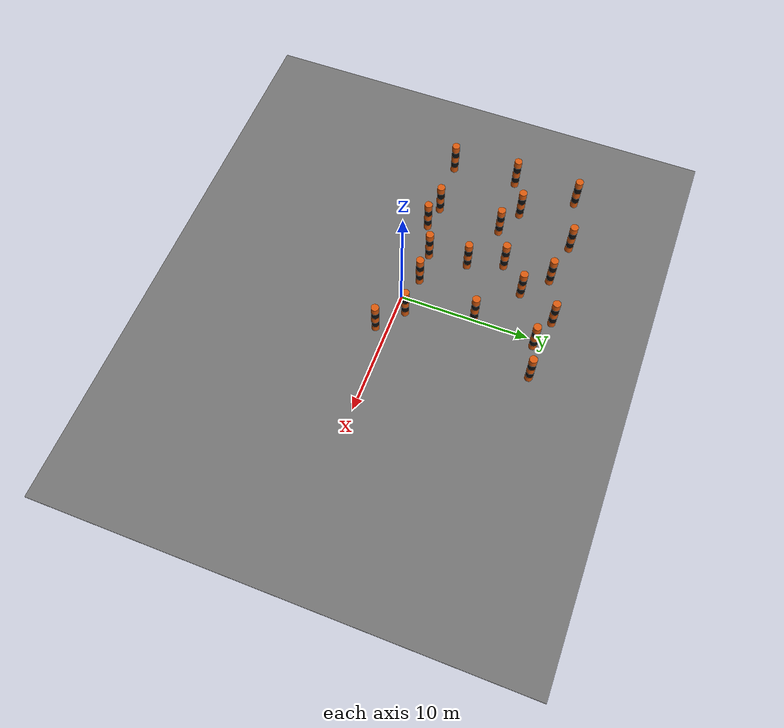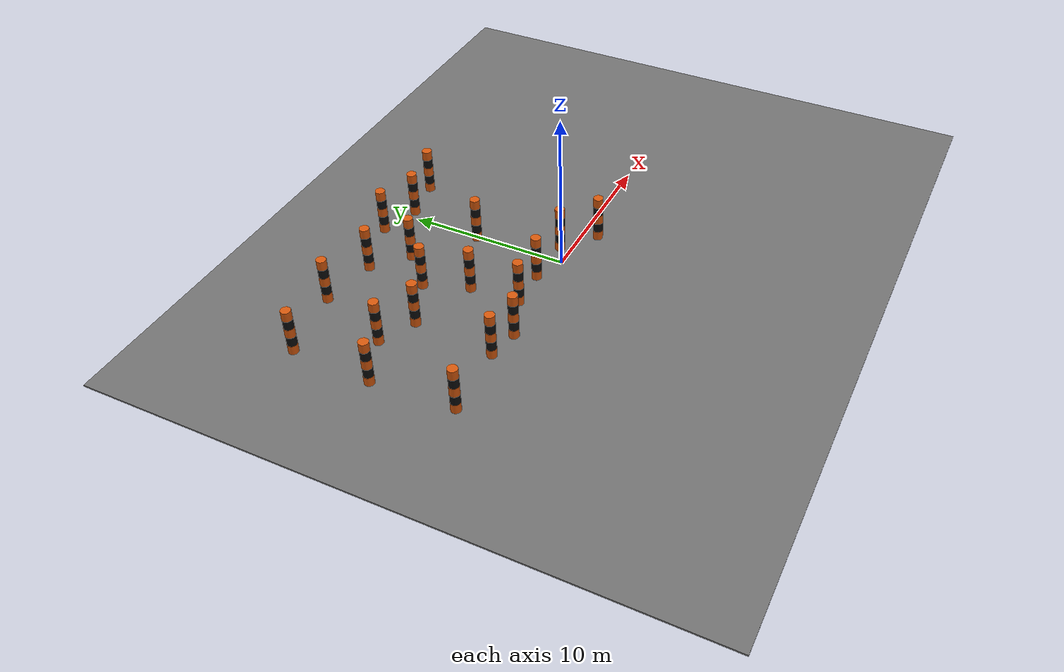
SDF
<sdf version="1.6">
 <world name="medium_forest_striped_poles_passable_0p10_per_m2">
  <model name="ground">
   <static>true</static>
   <pose>2 0 -0.05 0 0 0</pose>
   <link name="link">
    <collision name="collision">
     <geometry><box><size>44 37 0.1</size></box></geometry>
     <surface><friction><ode><mu>1.0</mu><mu2>1.0</mu2></ode></friction></surface>
    </collision>
    <visual name="visual">
     <geometry><box><size>44 37 0.1</size></box></geometry>
     <material>
      <ambient>0.45 0.45 0.45 1</ambient>
      <diffuse>0.45 0.45 0.45 1</diffuse>
      <specular>0.02 0.02 0.02 1</specular>
     </material>
    </visual>
   </link>
  </model>
  <model name="passable_striped_pole_006">
   <static>true</static>
   <pose>-6.835 -0.369 0 0 0 0</pose>
   <link name="link">
    <collision name="collision">
     <pose>0 0 1.5 0 0 0</pose>
     <geometry><cylinder><radius>0.30</radius><length>3.0</length></cylinder></geometry>
     <surface>
      <contact><ode><kp>1000000</kp><kd>100</kd><max_vel>0.01</max_vel><min_depth>0.001</min_depth></ode></contact>
      <friction><ode><mu>1.0</mu><mu2>1.0</mu2></ode></friction>
     </surface>
    </collision>
    <visual name="band_1">
     <pose>0 0 0.3 0 0 0</pose>
     <geometry><cylinder><radius>0.30</radius><length>0.6</length></cylinder></geometry>
     <material>
      <ambient>0.85 0.35 0.05 1</ambient>
      <diffuse>0.85 0.35 0.05 1</diffuse>
      <specular>0.02 0.02 0.02 1</specular>
     </material>
    </visual>
    <visual name="band_2">
     <pose>0 0 0.9 0 0 0</pose>
     <geometry><cylinder><radius>0.30</radius><length>0.6</length></cylinder></geometry>
     <material>
      <ambient>0.05 0.05 0.05 1</ambient>
      <diffuse>0.05 0.05 0.05 1</diffuse>
      <specular>0.02 0.02 0.02 1</specular>
     </material>
    </visual>
    <visual name="band_3">
     <pose>0 0 1.5 0 0 0</pose>
     <geometry><cylinder><radius>0.30</radius><length>0.6</length></cylinder></geometry>
     <material>
      <ambient>0.85 0.35 0.05 1</ambient>
      <diffuse>0.85 0.35 0.05 1</diffuse>
      <specular>0.02 0.02 0.02 1</specular>
     </material>
    </visual>
    <visual name="band_4">
     <pose>0 0 2.1 0 0 0</pose>
     <geometry><cylinder><radius>0.30</radius><length>0.6</length></cylinder></geometry>
     <material>
      <ambient>0.05 0.05 0.05 1</ambient>
      <diffuse>0.05 0.05 0.05 1</diffuse>
      <specular>0.02 0.02 0.02 1</specular>
     </material>
    </visual>
    <visual name="band_5">
     <pose>0 0 2.7 0 0 0</pose>
     <geometry><cylinder><radius>0.30</radius><length>0.6</length></cylinder></geometry>
     <material>
      <ambient>0.85 0.35 0.05 1</ambient>
      <diffuse>0.85 0.35 0.05 1</diffuse>
      <specular>0.02 0.02 0.02 1</specular>
     </material>
    </visual>
   </link>
  </model>
  <model name="passable_striped_pole_015">
   <static>true</static>
   <pose>3.138 11.044 0 0 0 0</pose>
   <link name="link">
    <collision name="collision">
     <pose>0 0 1.5 0 0 0</pose>
     <geometry><cylinder><radius>0.30</radius><length>3.0</length></cylinder></geometry>
     <surface>
      <contact><ode><kp>1000000</kp><kd>100</kd><max_vel>0.01</max_vel><min_depth>0.001</min_depth></ode></contact>
      <friction><ode><mu>1.0</mu><mu2>1.0</mu2></ode></friction>
     </surface>
    </collision>
    <visual name="band_1">
     <pose>0 0 0.3 0 0 0</pose>
     <geometry><cylinder><radius>0.30</radius><length>0.6</length></cylinder></geometry>
     <material>
      <ambient>0.85 0.35 0.05 1</ambient>
      <diffuse>0.85 0.35 0.05 1</diffuse>
      <specular>0.02 0.02 0.02 1</specular>
     </material>
    </visual>
    <visual name="band_2">
     <pose>0 0 0.9 0 0 0</pose>
     <geometry><cylinder><radius>0.30</radius><length>0.6</length></cylinder></geometry>
     <material>
      <ambient>0.05 0.05 0.05 1</ambient>
      <diffuse>0.05 0.05 0.05 1</diffuse>
      <specular>0.02 0.02 0.02 1</specular>
     </material>
    </visual>
    <visual name="band_3">
     <pose>0 0 1.5 0 0 0</pose>
     <geometry><cylinder><radius>0.30</radius><length>0.6</length></cylinder></geometry>
     <material>
      <ambient>0.85 0.35 0.05 1</ambient>
      <diffuse>0.85 0.35 0.05 1</diffuse>
      <specular>0.02 0.02 0.02 1</specular>
     </material>
    </visual>
    <visual name="band_4">
     <pose>0 0 2.1 0 0 0</pose>
     <geometry><cylinder><radius>0.30</radius><length>0.6</length></cylinder></geometry>
     <material>
      <ambient>0.05 0.05 0.05 1</ambient>
      <diffuse>0.05 0.05 0.05 1</diffuse>
      <specular>0.02 0.02 0.02 1</specular>
     </material>
    </visual>
    <visual name="band_5">
     <pose>0 0 2.7 0 0 0</pose>
     <geometry><cylinder><radius>0.30</radius><length>0.6</length></cylinder></geometry>
     <material>
      <ambient>0.85 0.35 0.05 1</ambient>
      <diffuse>0.85 0.35 0.05 1</diffuse>
      <specular>0.02 0.02 0.02 1</specular>
     </material>
    </visual>
   </link>
  </model>
  <model name="passable_striped_pole_016">
   <static>true</static>
   <pose>-1.814 0.770 0 0 0 0</pose>
   <link name="link">
    <collision name="collision">
     <pose>0 0 1.5 0 0 0</pose>
     <geometry><cylinder><radius>0.30</radius><length>3.0</length></cylinder></geometry>
     <surface>
      <contact><ode><kp>1000000</kp><kd>100</kd><max_vel>0.01</max_vel><min_depth>0.001</min_depth></ode></contact>
      <friction><ode><mu>1.0</mu><mu2>1.0</mu2></ode></friction>
     </surface>
    </collision>
    <visual name="band_1">
     <pose>0 0 0.3 0 0 0</pose>
     <geometry><cylinder><radius>0.30</radius><length>0.6</length></cylinder></geometry>
     <material>
      <ambient>0.85 0.35 0.05 1</ambient>
      <diffuse>0.85 0.35 0.05 1</diffuse>
      <specular>0.02 0.02 0.02 1</specular>
     </material>
    </visual>
    <visual name="band_2">
     <pose>0 0 0.9 0 0 0</pose>
     <geometry><cylinder><radius>0.30</radius><length>0.6</length></cylinder></geometry>
     <material>
      <ambient>0.05 0.05 0.05 1</ambient>
      <diffuse>0.05 0.05 0.05 1</diffuse>
      <specular>0.02 0.02 0.02 1</specular>
     </material>
    </visual>
    <visual name="band_3">
     <pose>0 0 1.5 0 0 0</pose>
     <geometry><cylinder><radius>0.30</radius><length>0.6</length></cylinder></geometry>
     <material>
      <ambient>0.85 0.35 0.05 1</ambient>
      <diffuse>0.85 0.35 0.05 1</diffuse>
      <specular>0.02 0.02 0.02 1</specular>
     </material>
    </visual>
    <visual name="band_4">
     <pose>0 0 2.1 0 0 0</pose>
     <geometry><cylinder><radius>0.30</radius><length>0.6</length></cylinder></geometry>
     <material>
      <ambient>0.05 0.05 0.05 1</ambient>
      <diffuse>0.05 0.05 0.05 1</diffuse>
      <specular>0.02 0.02 0.02 1</specular>
     </material>
    </visual>
    <visual name="band_5">
     <pose>0 0 2.7 0 0 0</pose>
     <geometry><cylinder><radius>0.30</radius><length>0.6</length></cylinder></geometry>
     <material>
      <ambient>0.85 0.35 0.05 1</ambient>
      <diffuse>0.85 0.35 0.05 1</diffuse>
      <specular>0.02 0.02 0.02 1</specular>
     </material>
    </visual>
   </link>
  </model>
  <model name="passable_striped_pole_020">
   <static>true</static>
   <pose>-5.317 10.154 0 0 0 0</pose>
   <link name="link">
    <collision name="collision">
     <pose>0 0 1.5 0 0 0</pose>
     <geometry><cylinder><radius>0.30</radius><length>3.0</length></cylinder></geometry>
     <surface>
      <contact><ode><kp>1000000</kp><kd>100</kd><max_vel>0.01</max_vel><min_depth>0.001</min_depth></ode></contact>
      <friction><ode><mu>1.0</mu><mu2>1.0</mu2></ode></friction>
     </surface>
    </collision>
    <visual name="band_1">
     <pose>0 0 0.3 0 0 0</pose>
     <geometry><cylinder><radius>0.30</radius><length>0.6</length></cylinder></geometry>
     <material>
      <ambient>0.85 0.35 0.05 1</ambient>
      <diffuse>0.85 0.35 0.05 1</diffuse>
      <specular>0.02 0.02 0.02 1</specular>
     </material>
    </visual>
    <visual name="band_2">
     <pose>0 0 0.9 0 0 0</pose>
     <geometry><cylinder><radius>0.30</radius><length>0.6</length></cylinder></geometry>
     <material>
      <ambient>0.05 0.05 0.05 1</ambient>
      <diffuse>0.05 0.05 0.05 1</diffuse>
      <specular>0.02 0.02 0.02 1</specular>
     </material>
    </visual>
    <visual name="band_3">
     <pose>0 0 1.5 0 0 0</pose>
     <geometry><cylinder><radius>0.30</radius><length>0.6</length></cylinder></geometry>
     <material>
      <ambient>0.85 0.35 0.05 1</ambient>
      <diffuse>0.85 0.35 0.05 1</diffuse>
      <specular>0.02 0.02 0.02 1</specular>
     </material>
    </visual>
    <visual name="band_4">
     <pose>0 0 2.1 0 0 0</pose>
     <geometry><cylinder><radius>0.30</radius><length>0.6</length></cylinder></geometry>
     <material>
      <ambient>0.05 0.05 0.05 1</ambient>
      <diffuse>0.05 0.05 0.05 1</diffuse>
      <specular>0.02 0.02 0.02 1</specular>
     </material>
    </visual>
    <visual name="band_5">
     <pose>0 0 2.7 0 0 0</pose>
     <geometry><cylinder><radius>0.30</radius><length>0.6</length></cylinder></geometry>
     <material>
      <ambient>0.85 0.35 0.05 1</ambient>
      <diffuse>0.85 0.35 0.05 1</diffuse>
      <specular>0.02 0.02 0.02 1</specular>
     </material>
    </visual>
   </link>
  </model>
  <model name="passable_striped_pole_021">
   <static>true</static>
   <pose>-8.326 5.091 0 0 0 0</pose>
   <link name="link">
    <collision name="collision">
     <pose>0 0 1.5 0 0 0</pose>
     <geometry><cylinder><radius>0.30</radius><length>3.0</length></cylinder></geometry>
     <surface>
      <contact><ode><kp>1000000</kp><kd>100</kd><max_vel>0.01</max_vel><min_depth>0.001</min_depth></ode></contact>
      <friction><ode><mu>1.0</mu><mu2>1.0</mu2></ode></friction>
     </surface>
    </collision>
    <visual name="band_1">
     <pose>0 0 0.3 0 0 0</pose>
     <geometry><cylinder><radius>0.30</radius><length>0.6</length></cylinder></geometry>
     <material>
      <ambient>0.85 0.35 0.05 1</ambient>
      <diffuse>0.85 0.35 0.05 1</diffuse>
      <specular>0.02 0.02 0.02 1</specular>
     </material>
    </visual>
    <visual name="band_2">
     <pose>0 0 0.9 0 0 0</pose>
     <geometry><cylinder><radius>0.30</radius><length>0.6</length></cylinder></geometry>
     <material>
      <ambient>0.05 0.05 0.05 1</ambient>
      <diffuse>0.05 0.05 0.05 1</diffuse>
      <specular>0.02 0.02 0.02 1</specular>
     </material>
    </visual>
    <visual name="band_3">
     <pose>0 0 1.5 0 0 0</pose>
     <geometry><cylinder><radius>0.30</radius><length>0.6</length></cylinder></geometry>
     <material>
      <ambient>0.85 0.35 0.05 1</ambient>
      <diffuse>0.85 0.35 0.05 1</diffuse>
      <specular>0.02 0.02 0.02 1</specular>
     </material>
    </visual>
    <visual name="band_4">
     <pose>0 0 2.1 0 0 0</pose>
     <geometry><cylinder><radius>0.30</radius><length>0.6</length></cylinder></geometry>
     <material>
      <ambient>0.05 0.05 0.05 1</ambient>
      <diffuse>0.05 0.05 0.05 1</diffuse>
      <specular>0.02 0.02 0.02 1</specular>
     </material>
    </visual>
    <visual name="band_5">
     <pose>0 0 2.7 0 0 0</pose>
     <geometry><cylinder><radius>0.30</radius><length>0.6</length></cylinder></geometry>
     <material>
      <ambient>0.85 0.35 0.05 1</ambient>
      <diffuse>0.85 0.35 0.05 1</diffuse>
      <specular>0.02 0.02 0.02 1</specular>
     </material>
    </visual>
   </link>
  </model>
  <model name="passable_striped_pole_035">
   <static>true</static>
   <pose>-13.339 4.886 0 0 0 0</pose>
   <link name="link">
    <collision name="collision">
     <pose>0 0 1.5 0 0 0</pose>
     <geometry><cylinder><radius>0.30</radius><length>3.0</length></cylinder></geometry>
     <surface>
      <contact><ode><kp>1000000</kp><kd>100</kd><max_vel>0.01</max_vel><min_depth>0.001</min_depth></ode></contact>
      <friction><ode><mu>1.0</mu><mu2>1.0</mu2></ode></friction>
     </surface>
    </collision>
    <visual name="band_1">
     <pose>0 0 0.3 0 0 0</pose>
     <geometry><cylinder><radius>0.30</radius><length>0.6</length></cylinder></geometry>
     <material>
      <ambient>0.85 0.35 0.05 1</ambient>
      <diffuse>0.85 0.35 0.05 1</diffuse>
      <specular>0.02 0.02 0.02 1</specular>
     </material>
    </visual>
    <visual name="band_2">
     <pose>0 0 0.9 0 0 0</pose>
     <geometry><cylinder><radius>0.30</radius><length>0.6</length></cylinder></geometry>
     <material>
      <ambient>0.05 0.05 0.05 1</ambient>
      <diffuse>0.05 0.05 0.05 1</diffuse>
      <specular>0.02 0.02 0.02 1</specular>
     </material>
    </visual>
    <visual name="band_3">
     <pose>0 0 1.5 0 0 0</pose>
     <geometry><cylinder><radius>0.30</radius><length>0.6</length></cylinder></geometry>
     <material>
      <ambient>0.85 0.35 0.05 1</ambient>
      <diffuse>0.85 0.35 0.05 1</diffuse>
      <specular>0.02 0.02 0.02 1</specular>
     </material>
    </visual>
    <visual name="band_4">
     <pose>0 0 2.1 0 0 0</pose>
     <geometry><cylinder><radius>0.30</radius><length>0.6</length></cylinder></geometry>
     <material>
      <ambient>0.05 0.05 0.05 1</ambient>
      <diffuse>0.05 0.05 0.05 1</diffuse>
      <specular>0.02 0.02 0.02 1</specular>
     </material>
    </visual>
    <visual name="band_5">
     <pose>0 0 2.7 0 0 0</pose>
     <geometry><cylinder><radius>0.30</radius><length>0.6</length></cylinder></geometry>
     <material>
      <ambient>0.85 0.35 0.05 1</ambient>
      <diffuse>0.85 0.35 0.05 1</diffuse>
      <specular>0.02 0.02 0.02 1</specular>
     </material>
    </visual>
   </link>
  </model>
  <model name="passable_striped_pole_036">
   <static>true</static>
   <pose>0.547 10.573 0 0 0 0</pose>
   <link name="link">
    <collision name="collision">
     <pose>0 0 1.5 0 0 0</pose>
     <geometry><cylinder><radius>0.30</radius><length>3.0</length></cylinder></geometry>
     <surface>
      <contact><ode><kp>1000000</kp><kd>100</kd><max_vel>0.01</max_vel><min_depth>0.001</min_depth></ode></contact>
      <friction><ode><mu>1.0</mu><mu2>1.0</mu2></ode></friction>
     </surface>
    </collision>
    <visual name="band_1">
     <pose>0 0 0.3 0 0 0</pose>
     <geometry><cylinder><radius>0.30</radius><length>0.6</length></cylinder></geometry>
     <material>
      <ambient>0.85 0.35 0.05 1</ambient>
      <diffuse>0.85 0.35 0.05 1</diffuse>
      <specular>0.02 0.02 0.02 1</specular>
     </material>
    </visual>
    <visual name="band_2">
     <pose>0 0 0.9 0 0 0</pose>
     <geometry><cylinder><radius>0.30</radius><length>0.6</length></cylinder></geometry>
     <material>
      <ambient>0.05 0.05 0.05 1</ambient>
      <diffuse>0.05 0.05 0.05 1</diffuse>
      <specular>0.02 0.02 0.02 1</specular>
     </material>
    </visual>
    <visual name="band_3">
     <pose>0 0 1.5 0 0 0</pose>
     <geometry><cylinder><radius>0.30</radius><length>0.6</length></cylinder></geometry>
     <material>
      <ambient>0.85 0.35 0.05 1</ambient>
      <diffuse>0.85 0.35 0.05 1</diffuse>
      <specular>0.02 0.02 0.02 1</specular>
     </material>
    </visual>
    <visual name="band_4">
     <pose>0 0 2.1 0 0 0</pose>
     <geometry><cylinder><radius>0.30</radius><length>0.6</length></cylinder></geometry>
     <material>
      <ambient>0.05 0.05 0.05 1</ambient>
      <diffuse>0.05 0.05 0.05 1</diffuse>
      <specular>0.02 0.02 0.02 1</specular>
     </material>
    </visual>
    <visual name="band_5">
     <pose>0 0 2.7 0 0 0</pose>
     <geometry><cylinder><radius>0.30</radius><length>0.6</length></cylinder></geometry>
     <material>
      <ambient>0.85 0.35 0.05 1</ambient>
      <diffuse>0.85 0.35 0.05 1</diffuse>
      <specular>0.02 0.02 0.02 1</specular>
     </material>
    </visual>
   </link>
  </model>
  <model name="passable_striped_pole_041">
   <static>true</static>
   <pose>-13.088 9.970 0 0 0 0</pose>
   <link name="link">
    <collision name="collision">
     <pose>0 0 1.5 0 0 0</pose>
     <geometry><cylinder><radius>0.30</radius><length>3.0</length></cylinder></geometry>
     <surface>
      <contact><ode><kp>1000000</kp><kd>100</kd><max_vel>0.01</max_vel><min_depth>0.001</min_depth></ode></contact>
      <friction><ode><mu>1.0</mu><mu2>1.0</mu2></ode></friction>
     </surface>
    </collision>
    <visual name="band_1">
     <pose>0 0 0.3 0 0 0</pose>
     <geometry><cylinder><radius>0.30</radius><length>0.6</length></cylinder></geometry>
     <material>
      <ambient>0.85 0.35 0.05 1</ambient>
      <diffuse>0.85 0.35 0.05 1</diffuse>
      <specular>0.02 0.02 0.02 1</specular>
     </material>
    </visual>
    <visual name="band_2">
     <pose>0 0 0.9 0 0 0</pose>
     <geometry><cylinder><radius>0.30</radius><length>0.6</length></cylinder></geometry>
     <material>
      <ambient>0.05 0.05 0.05 1</ambient>
      <diffuse>0.05 0.05 0.05 1</diffuse>
      <specular>0.02 0.02 0.02 1</specular>
     </material>
    </visual>
    <visual name="band_3">
     <pose>0 0 1.5 0 0 0</pose>
     <geometry><cylinder><radius>0.30</radius><length>0.6</length></cylinder></geometry>
     <material>
      <ambient>0.85 0.35 0.05 1</ambient>
      <diffuse>0.85 0.35 0.05 1</diffuse>
      <specular>0.02 0.02 0.02 1</specular>
     </material>
    </visual>
    <visual name="band_4">
     <pose>0 0 2.1 0 0 0</pose>
     <geometry><cylinder><radius>0.30</radius><length>0.6</length></cylinder></geometry>
     <material>
      <ambient>0.05 0.05 0.05 1</ambient>
      <diffuse>0.05 0.05 0.05 1</diffuse>
      <specular>0.02 0.02 0.02 1</specular>
     </material>
    </visual>
    <visual name="band_5">
     <pose>0 0 2.7 0 0 0</pose>
     <geometry><cylinder><radius>0.30</radius><length>0.6</length></cylinder></geometry>
     <material>
      <ambient>0.85 0.35 0.05 1</ambient>
      <diffuse>0.85 0.35 0.05 1</diffuse>
      <specular>0.02 0.02 0.02 1</specular>
     </material>
    </visual>
   </link>
  </model>
  <model name="passable_striped_pole_045">
   <static>true</static>
   <pose>1.224 0.715 0 0 0 0</pose>
   <link name="link">
    <collision name="collision">
     <pose>0 0 1.5 0 0 0</pose>
     <geometry><cylinder><radius>0.30</radius><length>3.0</length></cylinder></geometry>
     <surface>
      <contact><ode><kp>1000000</kp><kd>100</kd><max_vel>0.01</max_vel><min_depth>0.001</min_depth></ode></contact>
      <friction><ode><mu>1.0</mu><mu2>1.0</mu2></ode></friction>
     </surface>
    </collision>
    <visual name="band_1">
     <pose>0 0 0.3 0 0 0</pose>
     <geometry><cylinder><radius>0.30</radius><length>0.6</length></cylinder></geometry>
     <material>
      <ambient>0.85 0.35 0.05 1</ambient>
      <diffuse>0.85 0.35 0.05 1</diffuse>
      <specular>0.02 0.02 0.02 1</specular>
     </material>
    </visual>
    <visual name="band_2">
     <pose>0 0 0.9 0 0 0</pose>
     <geometry><cylinder><radius>0.30</radius><length>0.6</length></cylinder></geometry>
     <material>
      <ambient>0.05 0.05 0.05 1</ambient>
      <diffuse>0.05 0.05 0.05 1</diffuse>
      <specular>0.02 0.02 0.02 1</specular>
     </material>
    </visual>
    <visual name="band_3">
     <pose>0 0 1.5 0 0 0</pose>
     <geometry><cylinder><radius>0.30</radius><length>0.6</length></cylinder></geometry>
     <material>
      <ambient>0.85 0.35 0.05 1</ambient>
      <diffuse>0.85 0.35 0.05 1</diffuse>
      <specular>0.02 0.02 0.02 1</specular>
     </material>
    </visual>
    <visual name="band_4">
     <pose>0 0 2.1 0 0 0</pose>
     <geometry><cylinder><radius>0.30</radius><length>0.6</length></cylinder></geometry>
     <material>
      <ambient>0.05 0.05 0.05 1</ambient>
      <diffuse>0.05 0.05 0.05 1</diffuse>
      <specular>0.02 0.02 0.02 1</specular>
     </material>
    </visual>
    <visual name="band_5">
     <pose>0 0 2.7 0 0 0</pose>
     <geometry><cylinder><radius>0.30</radius><length>0.6</length></cylinder></geometry>
     <material>
      <ambient>0.85 0.35 0.05 1</ambient>
      <diffuse>0.85 0.35 0.05 1</diffuse>
      <specular>0.02 0.02 0.02 1</specular>
     </material>
    </visual>
   </link>
  </model>
  <model name="passable_striped_pole_053">
   <static>true</static>
   <pose>-1.800 11.342 0 0 0 0</pose>
   <link name="link">
    <collision name="collision">
     <pose>0 0 1.5 0 0 0</pose>
     <geometry><cylinder><radius>0.30</radius><length>3.0</length></cylinder></geometry>
     <surface>
      <contact><ode><kp>1000000</kp><kd>100</kd><max_vel>0.01</max_vel><min_depth>0.001</min_depth></ode></contact>
      <friction><ode><mu>1.0</mu><mu2>1.0</mu2></ode></friction>
     </surface>
    </collision>
    <visual name="band_1">
     <pose>0 0 0.3 0 0 0</pose>
     <geometry><cylinder><radius>0.30</radius><length>0.6</length></cylinder></geometry>
     <material>
      <ambient>0.85 0.35 0.05 1</ambient>
      <diffuse>0.85 0.35 0.05 1</diffuse>
      <specular>0.02 0.02 0.02 1</specular>
     </material>
    </visual>
    <visual name="band_2">
     <pose>0 0 0.9 0 0 0</pose>
     <geometry><cylinder><radius>0.30</radius><length>0.6</length></cylinder></geometry>
     <material>
      <ambient>0.05 0.05 0.05 1</ambient>
      <diffuse>0.05 0.05 0.05 1</diffuse>
      <specular>0.02 0.02 0.02 1</specular>
     </material>
    </visual>
    <visual name="band_3">
     <pose>0 0 1.5 0 0 0</pose>
     <geometry><cylinder><radius>0.30</radius><length>0.6</length></cylinder></geometry>
     <material>
      <ambient>0.85 0.35 0.05 1</ambient>
      <diffuse>0.85 0.35 0.05 1</diffuse>
      <specular>0.02 0.02 0.02 1</specular>
     </material>
    </visual>
    <visual name="band_4">
     <pose>0 0 2.1 0 0 0</pose>
     <geometry><cylinder><radius>0.30</radius><length>0.6</length></cylinder></geometry>
     <material>
      <ambient>0.05 0.05 0.05 1</ambient>
      <diffuse>0.05 0.05 0.05 1</diffuse>
      <specular>0.02 0.02 0.02 1</specular>
     </material>
    </visual>
    <visual name="band_5">
     <pose>0 0 2.7 0 0 0</pose>
     <geometry><cylinder><radius>0.30</radius><length>0.6</length></cylinder></geometry>
     <material>
      <ambient>0.85 0.35 0.05 1</ambient>
      <diffuse>0.85 0.35 0.05 1</diffuse>
      <specular>0.02 0.02 0.02 1</specular>
     </material>
    </visual>
   </link>
  </model>
  <model name="passable_striped_pole_054">
   <static>true</static>
   <pose>-5.373 6.431 0 0 0 0</pose>
   <link name="link">
    <collision name="collision">
     <pose>0 0 1.5 0 0 0</pose>
     <geometry><cylinder><radius>0.30</radius><length>3.0</length></cylinder></geometry>
     <surface>
      <contact><ode><kp>1000000</kp><kd>100</kd><max_vel>0.01</max_vel><min_depth>0.001</min_depth></ode></contact>
      <friction><ode><mu>1.0</mu><mu2>1.0</mu2></ode></friction>
     </surface>
    </collision>
    <visual name="band_1">
     <pose>0 0 0.3 0 0 0</pose>
     <geometry><cylinder><radius>0.30</radius><length>0.6</length></cylinder></geometry>
     <material>
      <ambient>0.85 0.35 0.05 1</ambient>
      <diffuse>0.85 0.35 0.05 1</diffuse>
      <specular>0.02 0.02 0.02 1</specular>
     </material>
    </visual>
    <visual name="band_2">
     <pose>0 0 0.9 0 0 0</pose>
     <geometry><cylinder><radius>0.30</radius><length>0.6</length></cylinder></geometry>
     <material>
      <ambient>0.05 0.05 0.05 1</ambient>
      <diffuse>0.05 0.05 0.05 1</diffuse>
      <specular>0.02 0.02 0.02 1</specular>
     </material>
    </visual>
    <visual name="band_3">
     <pose>0 0 1.5 0 0 0</pose>
     <geometry><cylinder><radius>0.30</radius><length>0.6</length></cylinder></geometry>
     <material>
      <ambient>0.85 0.35 0.05 1</ambient>
      <diffuse>0.85 0.35 0.05 1</diffuse>
      <specular>0.02 0.02 0.02 1</specular>
     </material>
    </visual>
    <visual name="band_4">
     <pose>0 0 2.1 0 0 0</pose>
     <geometry><cylinder><radius>0.30</radius><length>0.6</length></cylinder></geometry>
     <material>
      <ambient>0.05 0.05 0.05 1</ambient>
      <diffuse>0.05 0.05 0.05 1</diffuse>
      <specular>0.02 0.02 0.02 1</specular>
     </material>
    </visual>
    <visual name="band_5">
     <pose>0 0 2.7 0 0 0</pose>
     <geometry><cylinder><radius>0.30</radius><length>0.6</length></cylinder></geometry>
     <material>
      <ambient>0.85 0.35 0.05 1</ambient>
      <diffuse>0.85 0.35 0.05 1</diffuse>
      <specular>0.02 0.02 0.02 1</specular>
     </material>
    </visual>
   </link>
  </model>
  <model name="passable_striped_pole_056">
   <static>true</static>
   <pose>-8.757 10.743 0 0 0 0</pose>
   <link name="link">
    <collision name="collision">
     <pose>0 0 1.5 0 0 0</pose>
     <geometry><cylinder><radius>0.30</radius><length>3.0</length></cylinder></geometry>
     <surface>
      <contact><ode><kp>1000000</kp><kd>100</kd><max_vel>0.01</max_vel><min_depth>0.001</min_depth></ode></contact>
      <friction><ode><mu>1.0</mu><mu2>1.0</mu2></ode></friction>
     </surface>
    </collision>
    <visual name="band_1">
     <pose>0 0 0.3 0 0 0</pose>
     <geometry><cylinder><radius>0.30</radius><length>0.6</length></cylinder></geometry>
     <material>
      <ambient>0.85 0.35 0.05 1</ambient>
      <diffuse>0.85 0.35 0.05 1</diffuse>
      <specular>0.02 0.02 0.02 1</specular>
     </material>
    </visual>
    <visual name="band_2">
     <pose>0 0 0.9 0 0 0</pose>
     <geometry><cylinder><radius>0.30</radius><length>0.6</length></cylinder></geometry>
     <material>
      <ambient>0.05 0.05 0.05 1</ambient>
      <diffuse>0.05 0.05 0.05 1</diffuse>
      <specular>0.02 0.02 0.02 1</specular>
     </material>
    </visual>
    <visual name="band_3">
     <pose>0 0 1.5 0 0 0</pose>
     <geometry><cylinder><radius>0.30</radius><length>0.6</length></cylinder></geometry>
     <material>
      <ambient>0.85 0.35 0.05 1</ambient>
      <diffuse>0.85 0.35 0.05 1</diffuse>
      <specular>0.02 0.02 0.02 1</specular>
     </material>
    </visual>
    <visual name="band_4">
     <pose>0 0 2.1 0 0 0</pose>
     <geometry><cylinder><radius>0.30</radius><length>0.6</length></cylinder></geometry>
     <material>
      <ambient>0.05 0.05 0.05 1</ambient>
      <diffuse>0.05 0.05 0.05 1</diffuse>
      <specular>0.02 0.02 0.02 1</specular>
     </material>
    </visual>
    <visual name="band_5">
     <pose>0 0 2.7 0 0 0</pose>
     <geometry><cylinder><radius>0.30</radius><length>0.6</length></cylinder></geometry>
     <material>
      <ambient>0.85 0.35 0.05 1</ambient>
      <diffuse>0.85 0.35 0.05 1</diffuse>
      <specular>0.02 0.02 0.02 1</specular>
     </material>
    </visual>
   </link>
  </model>
  <model name="passable_striped_pole_064">
   <static>true</static>
   <pose>-3.393 8.390 0 0 0 0</pose>
   <link name="link">
    <collision name="collision">
     <pose>0 0 1.5 0 0 0</pose>
     <geometry><cylinder><radius>0.30</radius><length>3.0</length></cylinder></geometry>
     <surface>
      <contact><ode><kp>1000000</kp><kd>100</kd><max_vel>0.01</max_vel><min_depth>0.001</min_depth></ode></contact>
      <friction><ode><mu>1.0</mu><mu2>1.0</mu2></ode></friction>
     </surface>
    </collision>
    <visual name="band_1">
     <pose>0 0 0.3 0 0 0</pose>
     <geometry><cylinder><radius>0.30</radius><length>0.6</length></cylinder></geometry>
     <material>
      <ambient>0.85 0.35 0.05 1</ambient>
      <diffuse>0.85 0.35 0.05 1</diffuse>
      <specular>0.02 0.02 0.02 1</specular>
     </material>
    </visual>
    <visual name="band_2">
     <pose>0 0 0.9 0 0 0</pose>
     <geometry><cylinder><radius>0.30</radius><length>0.6</length></cylinder></geometry>
     <material>
      <ambient>0.05 0.05 0.05 1</ambient>
      <diffuse>0.05 0.05 0.05 1</diffuse>
      <specular>0.02 0.02 0.02 1</specular>
     </material>
    </visual>
    <visual name="band_3">
     <pose>0 0 1.5 0 0 0</pose>
     <geometry><cylinder><radius>0.30</radius><length>0.6</length></cylinder></geometry>
     <material>
      <ambient>0.85 0.35 0.05 1</ambient>
      <diffuse>0.85 0.35 0.05 1</diffuse>
      <specular>0.02 0.02 0.02 1</specular>
     </material>
    </visual>
    <visual name="band_4">
     <pose>0 0 2.1 0 0 0</pose>
     <geometry><cylinder><radius>0.30</radius><length>0.6</length></cylinder></geometry>
     <material>
      <ambient>0.05 0.05 0.05 1</ambient>
      <diffuse>0.05 0.05 0.05 1</diffuse>
      <specular>0.02 0.02 0.02 1</specular>
     </material>
    </visual>
    <visual name="band_5">
     <pose>0 0 2.7 0 0 0</pose>
     <geometry><cylinder><radius>0.30</radius><length>0.6</length></cylinder></geometry>
     <material>
      <ambient>0.85 0.35 0.05 1</ambient>
      <diffuse>0.85 0.35 0.05 1</diffuse>
      <specular>0.02 0.02 0.02 1</specular>
     </material>
    </visual>
   </link>
  </model>
  <model name="passable_striped_pole_067">
   <static>true</static>
   <pose>-4.250 0.670 0 0 0 0</pose>
   <link name="link">
    <collision name="collision">
     <pose>0 0 1.5 0 0 0</pose>
     <geometry><cylinder><radius>0.30</radius><length>3.0</length></cylinder></geometry>
     <surface>
      <contact><ode><kp>1000000</kp><kd>100</kd><max_vel>0.01</max_vel><min_depth>0.001</min_depth></ode></contact>
      <friction><ode><mu>1.0</mu><mu2>1.0</mu2></ode></friction>
     </surface>
    </collision>
    <visual name="band_1">
     <pose>0 0 0.3 0 0 0</pose>
     <geometry><cylinder><radius>0.30</radius><length>0.6</length></cylinder></geometry>
     <material>
      <ambient>0.85 0.35 0.05 1</ambient>
      <diffuse>0.85 0.35 0.05 1</diffuse>
      <specular>0.02 0.02 0.02 1</specular>
     </material>
    </visual>
    <visual name="band_2">
     <pose>0 0 0.9 0 0 0</pose>
     <geometry><cylinder><radius>0.30</radius><length>0.6</length></cylinder></geometry>
     <material>
      <ambient>0.05 0.05 0.05 1</ambient>
      <diffuse>0.05 0.05 0.05 1</diffuse>
      <specular>0.02 0.02 0.02 1</specular>
     </material>
    </visual>
    <visual name="band_3">
     <pose>0 0 1.5 0 0 0</pose>
     <geometry><cylinder><radius>0.30</radius><length>0.6</length></cylinder></geometry>
     <material>
      <ambient>0.85 0.35 0.05 1</ambient>
      <diffuse>0.85 0.35 0.05 1</diffuse>
      <specular>0.02 0.02 0.02 1</specular>
     </material>
    </visual>
    <visual name="band_4">
     <pose>0 0 2.1 0 0 0</pose>
     <geometry><cylinder><radius>0.30</radius><length>0.6</length></cylinder></geometry>
     <material>
      <ambient>0.05 0.05 0.05 1</ambient>
      <diffuse>0.05 0.05 0.05 1</diffuse>
      <specular>0.02 0.02 0.02 1</specular>
     </material>
    </visual>
    <visual name="band_5">
     <pose>0 0 2.7 0 0 0</pose>
     <geometry><cylinder><radius>0.30</radius><length>0.6</length></cylinder></geometry>
     <material>
      <ambient>0.85 0.35 0.05 1</ambient>
      <diffuse>0.85 0.35 0.05 1</diffuse>
      <specular>0.02 0.02 0.02 1</specular>
     </material>
    </visual>
   </link>
  </model>
  <model name="passable_striped_pole_072">
   <static>true</static>
   <pose>-10.500 6.149 0 0 0 0</pose>
   <link name="link">
    <collision name="collision">
     <pose>0 0 1.5 0 0 0</pose>
     <geometry><cylinder><radius>0.30</radius><length>3.0</length></cylinder></geometry>
     <surface>
      <contact><ode><kp>1000000</kp><kd>100</kd><max_vel>0.01</max_vel><min_depth>0.001</min_depth></ode></contact>
      <friction><ode><mu>1.0</mu><mu2>1.0</mu2></ode></friction>
     </surface>
    </collision>
    <visual name="band_1">
     <pose>0 0 0.3 0 0 0</pose>
     <geometry><cylinder><radius>0.30</radius><length>0.6</length></cylinder></geometry>
     <material>
      <ambient>0.85 0.35 0.05 1</ambient>
      <diffuse>0.85 0.35 0.05 1</diffuse>
      <specular>0.02 0.02 0.02 1</specular>
     </material>
    </visual>
    <visual name="band_2">
     <pose>0 0 0.9 0 0 0</pose>
     <geometry><cylinder><radius>0.30</radius><length>0.6</length></cylinder></geometry>
     <material>
      <ambient>0.05 0.05 0.05 1</ambient>
      <diffuse>0.05 0.05 0.05 1</diffuse>
      <specular>0.02 0.02 0.02 1</specular>
     </material>
    </visual>
    <visual name="band_3">
     <pose>0 0 1.5 0 0 0</pose>
     <geometry><cylinder><radius>0.30</radius><length>0.6</length></cylinder></geometry>
     <material>
      <ambient>0.85 0.35 0.05 1</ambient>
      <diffuse>0.85 0.35 0.05 1</diffuse>
      <specular>0.02 0.02 0.02 1</specular>
     </material>
    </visual>
    <visual name="band_4">
     <pose>0 0 2.1 0 0 0</pose>
     <geometry><cylinder><radius>0.30</radius><length>0.6</length></cylinder></geometry>
     <material>
      <ambient>0.05 0.05 0.05 1</ambient>
      <diffuse>0.05 0.05 0.05 1</diffuse>
      <specular>0.02 0.02 0.02 1</specular>
     </material>
    </visual>
    <visual name="band_5">
     <pose>0 0 2.7 0 0 0</pose>
     <geometry><cylinder><radius>0.30</radius><length>0.6</length></cylinder></geometry>
     <material>
      <ambient>0.85 0.35 0.05 1</ambient>
      <diffuse>0.85 0.35 0.05 1</diffuse>
      <specular>0.02 0.02 0.02 1</specular>
     </material>
    </visual>
   </link>
  </model>
  <model name="passable_striped_pole_075">
   <static>true</static>
   <pose>3.199 -0.903 0 0 0 0</pose>
   <link name="link">
    <collision name="collision">
     <pose>0 0 1.5 0 0 0</pose>
     <geometry><cylinder><radius>0.30</radius><length>3.0</length></cylinder></geometry>
     <surface>
      <contact><ode><kp>1000000</kp><kd>100</kd><max_vel>0.01</max_vel><min_depth>0.001</min_depth></ode></contact>
      <friction><ode><mu>1.0</mu><mu2>1.0</mu2></ode></friction>
     </surface>
    </collision>
    <visual name="band_1">
     <pose>0 0 0.3 0 0 0</pose>
     <geometry><cylinder><radius>0.30</radius><length>0.6</length></cylinder></geometry>
     <material>
      <ambient>0.85 0.35 0.05 1</ambient>
      <diffuse>0.85 0.35 0.05 1</diffuse>
      <specular>0.02 0.02 0.02 1</specular>
     </material>
    </visual>
    <visual name="band_2">
     <pose>0 0 0.9 0 0 0</pose>
     <geometry><cylinder><radius>0.30</radius><length>0.6</length></cylinder></geometry>
     <material>
      <ambient>0.05 0.05 0.05 1</ambient>
      <diffuse>0.05 0.05 0.05 1</diffuse>
      <specular>0.02 0.02 0.02 1</specular>
     </material>
    </visual>
    <visual name="band_3">
     <pose>0 0 1.5 0 0 0</pose>
     <geometry><cylinder><radius>0.30</radius><length>0.6</length></cylinder></geometry>
     <material>
      <ambient>0.85 0.35 0.05 1</ambient>
      <diffuse>0.85 0.35 0.05 1</diffuse>
      <specular>0.02 0.02 0.02 1</specular>
     </material>
    </visual>
    <visual name="band_4">
     <pose>0 0 2.1 0 0 0</pose>
     <geometry><cylinder><radius>0.30</radius><length>0.6</length></cylinder></geometry>
     <material>
      <ambient>0.05 0.05 0.05 1</ambient>
      <diffuse>0.05 0.05 0.05 1</diffuse>
      <specular>0.02 0.02 0.02 1</specular>
     </material>
    </visual>
    <visual name="band_5">
     <pose>0 0 2.7 0 0 0</pose>
     <geometry><cylinder><radius>0.30</radius><length>0.6</length></cylinder></geometry>
     <material>
      <ambient>0.85 0.35 0.05 1</ambient>
      <diffuse>0.85 0.35 0.05 1</diffuse>
      <specular>0.02 0.02 0.02 1</specular>
     </material>
    </visual>
   </link>
  </model>
  <model name="passable_striped_pole_076">
   <static>true</static>
   <pose>-13.060 -0.250 0 0 0 0</pose>
   <link name="link">
    <collision name="collision">
     <pose>0 0 1.5 0 0 0</pose>
     <geometry><cylinder><radius>0.30</radius><length>3.0</length></cylinder></geometry>
     <surface>
      <contact><ode><kp>1000000</kp><kd>100</kd><max_vel>0.01</max_vel><min_depth>0.001</min_depth></ode></contact>
      <friction><ode><mu>1.0</mu><mu2>1.0</mu2></ode></friction>
     </surface>
    </collision>
    <visual name="band_1">
     <pose>0 0 0.3 0 0 0</pose>
     <geometry><cylinder><radius>0.30</radius><length>0.6</length></cylinder></geometry>
     <material>
      <ambient>0.85 0.35 0.05 1</ambient>
      <diffuse>0.85 0.35 0.05 1</diffuse>
      <specular>0.02 0.02 0.02 1</specular>
     </material>
    </visual>
    <visual name="band_2">
     <pose>0 0 0.9 0 0 0</pose>
     <geometry><cylinder><radius>0.30</radius><length>0.6</length></cylinder></geometry>
     <material>
      <ambient>0.05 0.05 0.05 1</ambient>
      <diffuse>0.05 0.05 0.05 1</diffuse>
      <specular>0.02 0.02 0.02 1</specular>
     </material>
    </visual>
    <visual name="band_3">
     <pose>0 0 1.5 0 0 0</pose>
     <geometry><cylinder><radius>0.30</radius><length>0.6</length></cylinder></geometry>
     <material>
      <ambient>0.85 0.35 0.05 1</ambient>
      <diffuse>0.85 0.35 0.05 1</diffuse>
      <specular>0.02 0.02 0.02 1</specular>
     </material>
    </visual>
    <visual name="band_4">
     <pose>0 0 2.1 0 0 0</pose>
     <geometry><cylinder><radius>0.30</radius><length>0.6</length></cylinder></geometry>
     <material>
      <ambient>0.05 0.05 0.05 1</ambient>
      <diffuse>0.05 0.05 0.05 1</diffuse>
      <specular>0.02 0.02 0.02 1</specular>
     </material>
    </visual>
    <visual name="band_5">
     <pose>0 0 2.7 0 0 0</pose>
     <geometry><cylinder><radius>0.30</radius><length>0.6</length></cylinder></geometry>
     <material>
      <ambient>0.85 0.35 0.05 1</ambient>
      <diffuse>0.85 0.35 0.05 1</diffuse>
      <specular>0.02 0.02 0.02 1</specular>
     </material>
    </visual>
   </link>
  </model>
  <model name="passable_striped_pole_077">
   <static>true</static>
   <pose>-8.740 0 0 0 0 0</pose>
   <link name="link">
    <collision name="collision">
     <pose>0 0 1.5 0 0 0</pose>
     <geometry><cylinder><radius>0.30</radius><length>3.0</length></cylinder></geometry>
     <surface>
      <contact><ode><kp>1000000</kp><kd>100</kd><max_vel>0.01</max_vel><min_depth>0.001</min_depth></ode></contact>
      <friction><ode><mu>1.0</mu><mu2>1.0</mu2></ode></friction>
     </surface>
    </collision>
    <visual name="band_1">
     <pose>0 0 0.3 0 0 0</pose>
     <geometry><cylinder><radius>0.30</radius><length>0.6</length></cylinder></geometry>
     <material>
      <ambient>0.85 0.35 0.05 1</ambient>
      <diffuse>0.85 0.35 0.05 1</diffuse>
      <specular>0.02 0.02 0.02 1</specular>
     </material>
    </visual>
    <visual name="band_2">
     <pose>0 0 0.9 0 0 0</pose>
     <geometry><cylinder><radius>0.30</radius><length>0.6</length></cylinder></geometry>
     <material>
      <ambient>0.05 0.05 0.05 1</ambient>
      <diffuse>0.05 0.05 0.05 1</diffuse>
      <specular>0.02 0.02 0.02 1</specular>
     </material>
    </visual>
    <visual name="band_3">
     <pose>0 0 1.5 0 0 0</pose>
     <geometry><cylinder><radius>0.30</radius><length>0.6</length></cylinder></geometry>
     <material>
      <ambient>0.85 0.35 0.05 1</ambient>
      <diffuse>0.85 0.35 0.05 1</diffuse>
      <specular>0.02 0.02 0.02 1</specular>
     </material>
    </visual>
    <visual name="band_4">
     <pose>0 0 2.1 0 0 0</pose>
     <geometry><cylinder><radius>0.30</radius><length>0.6</length></cylinder></geometry>
     <material>
      <ambient>0.05 0.05 0.05 1</ambient>
      <diffuse>0.05 0.05 0.05 1</diffuse>
      <specular>0.02 0.02 0.02 1</specular>
     </material>
    </visual>
    <visual name="band_5">
     <pose>0 0 2.7 0 0 0</pose>
     <geometry><cylinder><radius>0.30</radius><length>0.6</length></cylinder></geometry>
     <material>
      <ambient>0.85 0.35 0.05 1</ambient>
      <diffuse>0.85 0.35 0.05 1</diffuse>
      <specular>0.02 0.02 0.02 1</specular>
     </material>
    </visual>
   </link>
  </model>
  <model name="passable_striped_pole_078">
   <static>true</static>
   <pose>-4.420 3.750 0 0 0 0</pose>
   <link name="link">
    <collision name="collision">
     <pose>0 0 1.5 0 0 0</pose>
     <geometry><cylinder><radius>0.30</radius><length>3.0</length></cylinder></geometry>
     <surface>
      <contact><ode><kp>1000000</kp><kd>100</kd><max_vel>0.01</max_vel><min_depth>0.001</min_depth></ode></contact>
      <friction><ode><mu>1.0</mu><mu2>1.0</mu2></ode></friction>
     </surface>
    </collision>
    <visual name="band_1">
     <pose>0 0 0.3 0 0 0</pose>
     <geometry><cylinder><radius>0.30</radius><length>0.6</length></cylinder></geometry>
     <material>
      <ambient>0.85 0.35 0.05 1</ambient>
      <diffuse>0.85 0.35 0.05 1</diffuse>
      <specular>0.02 0.02 0.02 1</specular>
     </material>
    </visual>
    <visual name="band_2">
     <pose>0 0 0.9 0 0 0</pose>
     <geometry><cylinder><radius>0.30</radius><length>0.6</length></cylinder></geometry>
     <material>
      <ambient>0.05 0.05 0.05 1</ambient>
      <diffuse>0.05 0.05 0.05 1</diffuse>
      <specular>0.02 0.02 0.02 1</specular>
     </material>
    </visual>
    <visual name="band_3">
     <pose>0 0 1.5 0 0 0</pose>
     <geometry><cylinder><radius>0.30</radius><length>0.6</length></cylinder></geometry>
     <material>
      <ambient>0.85 0.35 0.05 1</ambient>
      <diffuse>0.85 0.35 0.05 1</diffuse>
      <specular>0.02 0.02 0.02 1</specular>
     </material>
    </visual>
    <visual name="band_4">
     <pose>0 0 2.1 0 0 0</pose>
     <geometry><cylinder><radius>0.30</radius><length>0.6</length></cylinder></geometry>
     <material>
      <ambient>0.05 0.05 0.05 1</ambient>
      <diffuse>0.05 0.05 0.05 1</diffuse>
      <specular>0.02 0.02 0.02 1</specular>
     </material>
    </visual>
    <visual name="band_5">
     <pose>0 0 2.7 0 0 0</pose>
     <geometry><cylinder><radius>0.30</radius><length>0.6</length></cylinder></geometry>
     <material>
      <ambient>0.85 0.35 0.05 1</ambient>
      <diffuse>0.85 0.35 0.05 1</diffuse>
      <specular>0.02 0.02 0.02 1</specular>
     </material>
    </visual>
   </link>
  </model>
  <model name="passable_striped_pole_079">
   <static>true</static>
   <pose>-0.100 5.750 0 0 0 0</pose>
   <link name="link">
    <collision name="collision">
     <pose>0 0 1.5 0 0 0</pose>
     <geometry><cylinder><radius>0.30</radius><length>3.0</length></cylinder></geometry>
     <surface>
      <contact><ode><kp>1000000</kp><kd>100</kd><max_vel>0.01</max_vel><min_depth>0.001</min_depth></ode></contact>
      <friction><ode><mu>1.0</mu><mu2>1.0</mu2></ode></friction>
     </surface>
    </collision>
    <visual name="band_1">
     <pose>0 0 0.3 0 0 0</pose>
     <geometry><cylinder><radius>0.30</radius><length>0.6</length></cylinder></geometry>
     <material>
      <ambient>0.85 0.35 0.05 1</ambient>
      <diffuse>0.85 0.35 0.05 1</diffuse>
      <specular>0.02 0.02 0.02 1</specular>
     </material>
    </visual>
    <visual name="band_2">
     <pose>0 0 0.9 0 0 0</pose>
     <geometry><cylinder><radius>0.30</radius><length>0.6</length></cylinder></geometry>
     <material>
      <ambient>0.05 0.05 0.05 1</ambient>
      <diffuse>0.05 0.05 0.05 1</diffuse>
      <specular>0.02 0.02 0.02 1</specular>
     </material>
    </visual>
    <visual name="band_3">
     <pose>0 0 1.5 0 0 0</pose>
     <geometry><cylinder><radius>0.30</radius><length>0.6</length></cylinder></geometry>
     <material>
      <ambient>0.85 0.35 0.05 1</ambient>
      <diffuse>0.85 0.35 0.05 1</diffuse>
      <specular>0.02 0.02 0.02 1</specular>
     </material>
    </visual>
    <visual name="band_4">
     <pose>0 0 2.1 0 0 0</pose>
     <geometry><cylinder><radius>0.30</radius><length>0.6</length></cylinder></geometry>
     <material>
      <ambient>0.05 0.05 0.05 1</ambient>
      <diffuse>0.05 0.05 0.05 1</diffuse>
      <specular>0.02 0.02 0.02 1</specular>
     </material>
    </visual>
    <visual name="band_5">
     <pose>0 0 2.7 0 0 0</pose>
     <geometry><cylinder><radius>0.30</radius><length>0.6</length></cylinder></geometry>
     <material>
      <ambient>0.85 0.35 0.05 1</ambient>
      <diffuse>0.85 0.35 0.05 1</diffuse>
      <specular>0.02 0.02 0.02 1</specular>
     </material>
    </visual>
   </link>
  </model>
 </world>
</sdf>
